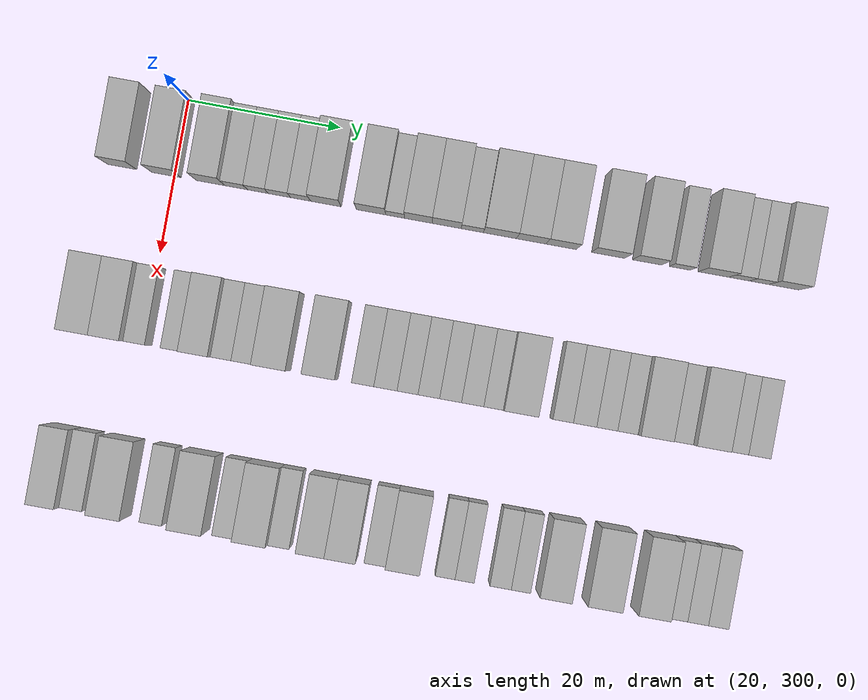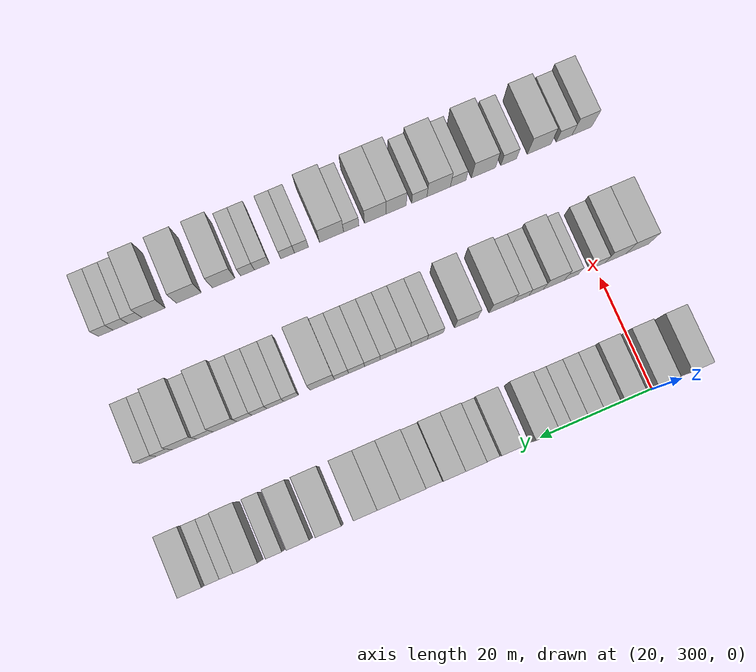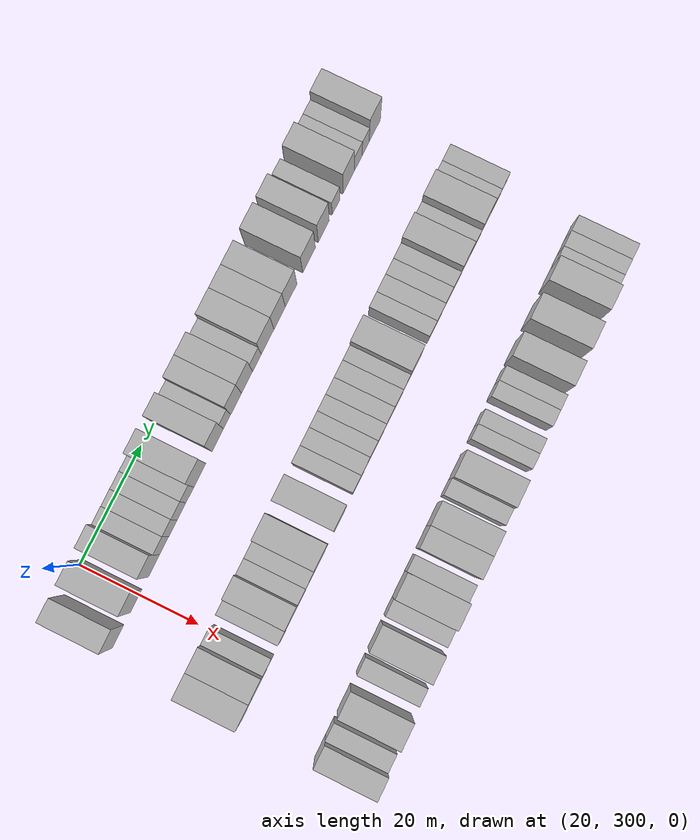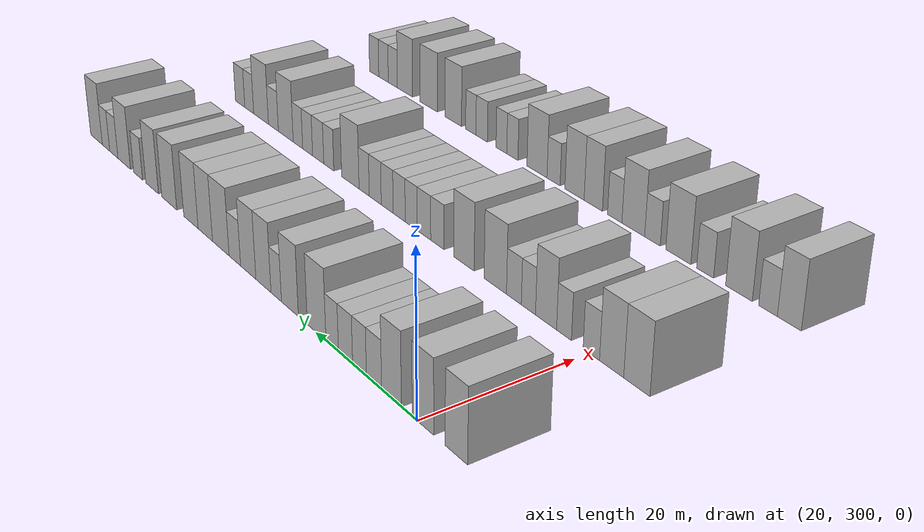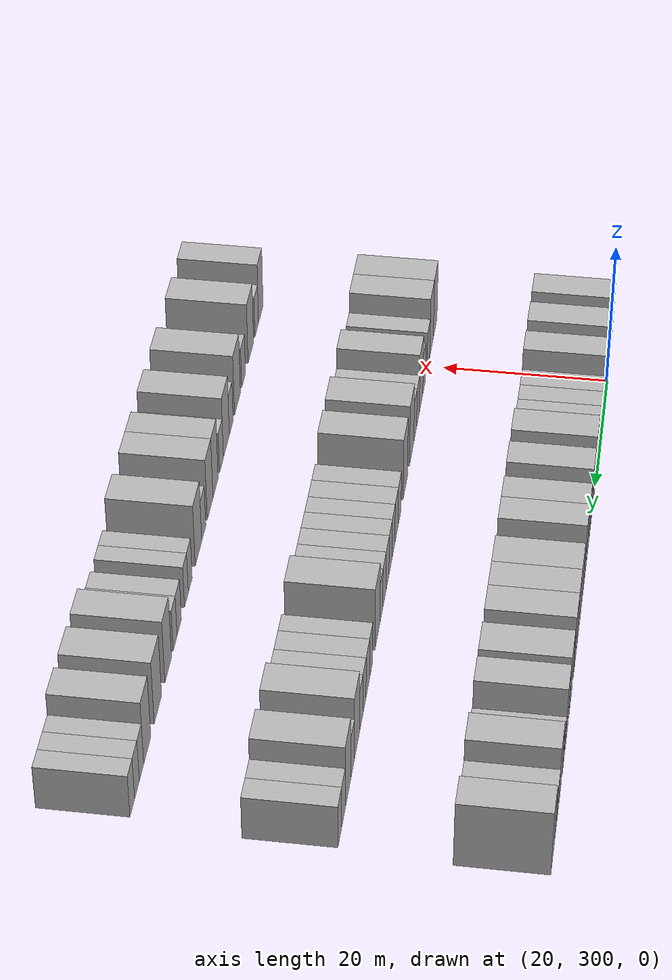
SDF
<sdf version="1.6">
 <world name="default">
  <model name="building_161">
   <static>1</static>
   <pose>25.0000 293.1831 0 0.000000 0.000000 0.000000</pose>
   <link name="link">
    <pose>0 0 4.50 0 0 0</pose>
    <collision name="collision"><geometry><box><size>10.0000 3.8060 9.0000</size></box></geometry></collision>
    <visual name="visual">
     <cast_shadows>0</cast_shadows>
     <geometry><box><size>10.0000 3.8060 9.0000</size></box></geometry>
     <material>
      <script>
       <uri>model://HANNAS_wall/materials/scripts</uri>
       <uri>model://HANNAS_wall/materials/textures</uri>
       <name>vrc/HANNAS_wall</name>
      </script>
     </material>
    </visual>
   </link>
  </model>
  <model name="building_162">
   <static>1</static>
   <pose>25.0000 299.0034 0 0.000000 0.000000 0.000000</pose>
   <link name="link">
    <pose>0 0 4.50 0 0 0</pose>
    <collision name="collision"><geometry><box><size>10.0000 3.8346 9.0000</size></box></geometry></collision>
    <visual name="visual">
     <cast_shadows>0</cast_shadows>
     <geometry><box><size>10.0000 3.8346 9.0000</size></box></geometry>
     <material>
      <script>
       <uri>model://HANNAS_wall/materials/scripts</uri>
       <uri>model://HANNAS_wall/materials/textures</uri>
       <name>vrc/HANNAS_wall</name>
      </script>
     </material>
    </visual>
   </link>
  </model>
  <model name="building_163">
   <static>1</static>
   <pose>25.0000 304.7904 0 0.000000 0.000000 0.000000</pose>
   <link name="link">
    <pose>0 0 4.50 0 0 0</pose>
    <collision name="collision"><geometry><box><size>10.0000 3.7392 9.0000</size></box></geometry></collision>
    <visual name="visual">
     <cast_shadows>0</cast_shadows>
     <geometry><box><size>10.0000 3.7392 9.0000</size></box></geometry>
     <material>
      <script>
       <uri>model://HANNAS_wall/materials/scripts</uri>
       <uri>model://HANNAS_wall/materials/textures</uri>
       <name>vrc/HANNAS_wall</name>
      </script>
     </material>
    </visual>
   </link>
  </model>
  <model name="building_164">
   <static>1</static>
   <pose>25.0000 308.1409 0 0.000000 0.000000 0.000000</pose>
   <link name="link">
    <pose>0 0 3.00 0 0 0</pose>
    <collision name="collision"><geometry><box><size>10.0000 2.9619 6.0000</size></box></geometry></collision>
    <visual name="visual">
     <cast_shadows>0</cast_shadows>
     <geometry><box><size>10.0000 2.9619 6.0000</size></box></geometry>
     <material>
      <script>
       <uri>model://HANNAS_wall/materials/scripts</uri>
       <uri>model://HANNAS_wall/materials/textures</uri>
       <name>vrc/HANNAS_wall</name>
      </script>
     </material>
    </visual>
   </link>
  </model>
  <model name="building_165">
   <static>1</static>
   <pose>25.0000 311.0022 0 0.000000 0.000000 0.000000</pose>
   <link name="link">
    <pose>0 0 3.00 0 0 0</pose>
    <collision name="collision"><geometry><box><size>10.0000 2.7606 6.0000</size></box></geometry></collision>
    <visual name="visual">
     <cast_shadows>0</cast_shadows>
     <geometry><box><size>10.0000 2.7606 6.0000</size></box></geometry>
     <material>
      <script>
       <uri>model://HANNAS_wall/materials/scripts</uri>
       <uri>model://HANNAS_wall/materials/textures</uri>
       <name>vrc/HANNAS_wall</name>
      </script>
     </material>
    </visual>
   </link>
  </model>
  <model name="building_166">
   <static>1</static>
   <pose>25.0000 313.8347 0 0.000000 0.000000 0.000000</pose>
   <link name="link">
    <pose>0 0 3.00 0 0 0</pose>
    <collision name="collision"><geometry><box><size>10.0000 2.9045 6.0000</size></box></geometry></collision>
    <visual name="visual">
     <cast_shadows>0</cast_shadows>
     <geometry><box><size>10.0000 2.9045 6.0000</size></box></geometry>
     <material>
      <script>
       <uri>model://HANNAS_wall/materials/scripts</uri>
       <uri>model://HANNAS_wall/materials/textures</uri>
       <name>vrc/HANNAS_wall</name>
      </script>
     </material>
    </visual>
   </link>
  </model>
  <model name="building_167">
   <static>1</static>
   <pose>25.0000 316.6052 0 0.000000 0.000000 0.000000</pose>
   <link name="link">
    <pose>0 0 3.00 0 0 0</pose>
    <collision name="collision"><geometry><box><size>10.0000 2.6365 6.0000</size></box></geometry></collision>
    <visual name="visual">
     <cast_shadows>0</cast_shadows>
     <geometry><box><size>10.0000 2.6365 6.0000</size></box></geometry>
     <material>
      <script>
       <uri>model://HANNAS_wall/materials/scripts</uri>
       <uri>model://HANNAS_wall/materials/textures</uri>
       <name>vrc/HANNAS_wall</name>
      </script>
     </material>
    </visual>
   </link>
  </model>
  <model name="building_168">
   <static>1</static>
   <pose>25.0000 319.9328 0 0.000000 0.000000 0.000000</pose>
   <link name="link">
    <pose>0 0 4.50 0 0 0</pose>
    <collision name="collision"><geometry><box><size>10.0000 4.0187 9.0000</size></box></geometry></collision>
    <visual name="visual">
     <cast_shadows>0</cast_shadows>
     <geometry><box><size>10.0000 4.0187 9.0000</size></box></geometry>
     <material>
      <script>
       <uri>model://HANNAS_wall/materials/scripts</uri>
       <uri>model://HANNAS_wall/materials/textures</uri>
       <name>vrc/HANNAS_wall</name>
      </script>
     </material>
    </visual>
   </link>
  </model>
  <model name="building_169">
   <static>1</static>
   <pose>25.0000 325.8651 0 0.000000 0.000000 0.000000</pose>
   <link name="link">
    <pose>0 0 4.50 0 0 0</pose>
    <collision name="collision"><geometry><box><size>10.0000 3.8458 9.0000</size></box></geometry></collision>
    <visual name="visual">
     <cast_shadows>0</cast_shadows>
     <geometry><box><size>10.0000 3.8458 9.0000</size></box></geometry>
     <material>
      <script>
       <uri>model://HANNAS_wall/materials/scripts</uri>
       <uri>model://HANNAS_wall/materials/textures</uri>
       <name>vrc/HANNAS_wall</name>
      </script>
     </material>
    </visual>
   </link>
  </model>
  <model name="building_170">
   <static>1</static>
   <pose>25.0000 329.0151 0 0.000000 0.000000 0.000000</pose>
   <link name="link">
    <pose>0 0 3.00 0 0 0</pose>
    <collision name="collision"><geometry><box><size>10.0000 2.4544 6.0000</size></box></geometry></collision>
    <visual name="visual">
     <cast_shadows>0</cast_shadows>
     <geometry><box><size>10.0000 2.4544 6.0000</size></box></geometry>
     <material>
      <script>
       <uri>model://HANNAS_wall/materials/scripts</uri>
       <uri>model://HANNAS_wall/materials/textures</uri>
       <name>vrc/HANNAS_wall</name>
      </script>
     </material>
    </visual>
   </link>
  </model>
  <model name="building_171">
   <static>1</static>
   <pose>25.0000 332.0528 0 0.000000 0.000000 0.000000</pose>
   <link name="link">
    <pose>0 0 4.50 0 0 0</pose>
    <collision name="collision"><geometry><box><size>10.0000 3.6209 9.0000</size></box></geometry></collision>
    <visual name="visual">
     <cast_shadows>0</cast_shadows>
     <geometry><box><size>10.0000 3.6209 9.0000</size></box></geometry>
     <material>
      <script>
       <uri>model://HANNAS_wall/materials/scripts</uri>
       <uri>model://HANNAS_wall/materials/textures</uri>
       <name>vrc/HANNAS_wall</name>
      </script>
     </material>
    </visual>
   </link>
  </model>
  <model name="building_172">
   <static>1</static>
   <pose>25.0000 335.7485 0 0.000000 0.000000 0.000000</pose>
   <link name="link">
    <pose>0 0 4.50 0 0 0</pose>
    <collision name="collision"><geometry><box><size>10.0000 3.7706 9.0000</size></box></geometry></collision>
    <visual name="visual">
     <cast_shadows>0</cast_shadows>
     <geometry><box><size>10.0000 3.7706 9.0000</size></box></geometry>
     <material>
      <script>
       <uri>model://HANNAS_wall/materials/scripts</uri>
       <uri>model://HANNAS_wall/materials/textures</uri>
       <name>vrc/HANNAS_wall</name>
      </script>
     </material>
    </visual>
   </link>
  </model>
  <model name="building_173">
   <static>1</static>
   <pose>25.0000 339.0953 0 0.000000 0.000000 0.000000</pose>
   <link name="link">
    <pose>0 0 3.00 0 0 0</pose>
    <collision name="collision"><geometry><box><size>10.0000 2.9230 6.0000</size></box></geometry></collision>
    <visual name="visual">
     <cast_shadows>0</cast_shadows>
     <geometry><box><size>10.0000 2.9230 6.0000</size></box></geometry>
     <material>
      <script>
       <uri>model://HANNAS_wall/materials/scripts</uri>
       <uri>model://HANNAS_wall/materials/textures</uri>
       <name>vrc/HANNAS_wall</name>
      </script>
     </material>
    </visual>
   </link>
  </model>
  <model name="building_174">
   <static>1</static>
   <pose>25.0000 342.7261 0 0.000000 0.000000 0.000000</pose>
   <link name="link">
    <pose>0 0 4.50 0 0 0</pose>
    <collision name="collision"><geometry><box><size>10.0000 4.3387 9.0000</size></box></geometry></collision>
    <visual name="visual">
     <cast_shadows>0</cast_shadows>
     <geometry><box><size>10.0000 4.3387 9.0000</size></box></geometry>
     <material>
      <script>
       <uri>model://HANNAS_wall/materials/scripts</uri>
       <uri>model://HANNAS_wall/materials/textures</uri>
       <name>vrc/HANNAS_wall</name>
      </script>
     </material>
    </visual>
   </link>
  </model>
  <model name="building_175">
   <static>1</static>
   <pose>25.0000 346.8338 0 0.000000 0.000000 0.000000</pose>
   <link name="link">
    <pose>0 0 4.50 0 0 0</pose>
    <collision name="collision"><geometry><box><size>10.0000 3.8768 9.0000</size></box></geometry></collision>
    <visual name="visual">
     <cast_shadows>0</cast_shadows>
     <geometry><box><size>10.0000 3.8768 9.0000</size></box></geometry>
     <material>
      <script>
       <uri>model://HANNAS_wall/materials/scripts</uri>
       <uri>model://HANNAS_wall/materials/textures</uri>
       <name>vrc/HANNAS_wall</name>
      </script>
     </material>
    </visual>
   </link>
  </model>
  <model name="building_176">
   <static>1</static>
   <pose>25.0000 350.7687 0 0.000000 0.000000 0.000000</pose>
   <link name="link">
    <pose>0 0 4.50 0 0 0</pose>
    <collision name="collision"><geometry><box><size>10.0000 3.9929 9.0000</size></box></geometry></collision>
    <visual name="visual">
     <cast_shadows>0</cast_shadows>
     <geometry><box><size>10.0000 3.9929 9.0000</size></box></geometry>
     <material>
      <script>
       <uri>model://HANNAS_wall/materials/scripts</uri>
       <uri>model://HANNAS_wall/materials/textures</uri>
       <name>vrc/HANNAS_wall</name>
      </script>
     </material>
    </visual>
   </link>
  </model>
  <model name="building_177">
   <static>1</static>
   <pose>25.0000 356.9418 0 0.000000 0.000000 0.000000</pose>
   <link name="link">
    <pose>0 0 4.50 0 0 0</pose>
    <collision name="collision"><geometry><box><size>10.0000 4.3532 9.0000</size></box></geometry></collision>
    <visual name="visual">
     <cast_shadows>0</cast_shadows>
     <geometry><box><size>10.0000 4.3532 9.0000</size></box></geometry>
     <material>
      <script>
       <uri>model://HANNAS_wall/materials/scripts</uri>
       <uri>model://HANNAS_wall/materials/textures</uri>
       <name>vrc/HANNAS_wall</name>
      </script>
     </material>
    </visual>
   </link>
  </model>
  <model name="building_178">
   <static>1</static>
   <pose>25.0000 362.0363 0 0.000000 0.000000 0.000000</pose>
   <link name="link">
    <pose>0 0 4.50 0 0 0</pose>
    <collision name="collision"><geometry><box><size>10.0000 3.8358 9.0000</size></box></geometry></collision>
    <visual name="visual">
     <cast_shadows>0</cast_shadows>
     <geometry><box><size>10.0000 3.8358 9.0000</size></box></geometry>
     <material>
      <script>
       <uri>model://HANNAS_wall/materials/scripts</uri>
       <uri>model://HANNAS_wall/materials/textures</uri>
       <name>vrc/HANNAS_wall</name>
      </script>
     </material>
    </visual>
   </link>
  </model>
  <model name="building_179">
   <static>1</static>
   <pose>25.0000 366.3366 0 0.000000 0.000000 0.000000</pose>
   <link name="link">
    <pose>0 0 3.00 0 0 0</pose>
    <collision name="collision"><geometry><box><size>10.0000 2.7650 6.0000</size></box></geometry></collision>
    <visual name="visual">
     <cast_shadows>0</cast_shadows>
     <geometry><box><size>10.0000 2.7650 6.0000</size></box></geometry>
     <material>
      <script>
       <uri>model://HANNAS_wall/materials/scripts</uri>
       <uri>model://HANNAS_wall/materials/textures</uri>
       <name>vrc/HANNAS_wall</name>
      </script>
     </material>
    </visual>
   </link>
  </model>
  <model name="building_180">
   <static>1</static>
   <pose>25.0000 370.7335 0 0.000000 0.000000 0.000000</pose>
   <link name="link">
    <pose>0 0 4.50 0 0 0</pose>
    <collision name="collision"><geometry><box><size>10.0000 4.0288 9.0000</size></box></geometry></collision>
    <visual name="visual">
     <cast_shadows>0</cast_shadows>
     <geometry><box><size>10.0000 4.0288 9.0000</size></box></geometry>
     <material>
      <script>
       <uri>model://HANNAS_wall/materials/scripts</uri>
       <uri>model://HANNAS_wall/materials/textures</uri>
       <name>vrc/HANNAS_wall</name>
      </script>
     </material>
    </visual>
   </link>
  </model>
  <model name="building_181">
   <static>1</static>
   <pose>25.0000 374.1108 0 0.000000 0.000000 0.000000</pose>
   <link name="link">
    <pose>0 0 3.00 0 0 0</pose>
    <collision name="collision"><geometry><box><size>10.0000 2.7257 6.0000</size></box></geometry></collision>
    <visual name="visual">
     <cast_shadows>0</cast_shadows>
     <geometry><box><size>10.0000 2.7257 6.0000</size></box></geometry>
     <material>
      <script>
       <uri>model://HANNAS_wall/materials/scripts</uri>
       <uri>model://HANNAS_wall/materials/textures</uri>
       <name>vrc/HANNAS_wall</name>
      </script>
     </material>
    </visual>
   </link>
  </model>
  <model name="building_182">
   <static>1</static>
   <pose>25.0000 376.7117 0 0.000000 0.000000 0.000000</pose>
   <link name="link">
    <pose>0 0 3.00 0 0 0</pose>
    <collision name="collision"><geometry><box><size>10.0000 2.4762 6.0000</size></box></geometry></collision>
    <visual name="visual">
     <cast_shadows>0</cast_shadows>
     <geometry><box><size>10.0000 2.4762 6.0000</size></box></geometry>
     <material>
      <script>
       <uri>model://HANNAS_wall/materials/scripts</uri>
       <uri>model://HANNAS_wall/materials/textures</uri>
       <name>vrc/HANNAS_wall</name>
      </script>
     </material>
    </visual>
   </link>
  </model>
  <model name="building_183">
   <static>1</static>
   <pose>25.0000 379.9476 0 0.000000 0.000000 0.000000</pose>
   <link name="link">
    <pose>0 0 4.50 0 0 0</pose>
    <collision name="collision"><geometry><box><size>10.0000 3.9957 9.0000</size></box></geometry></collision>
    <visual name="visual">
     <cast_shadows>0</cast_shadows>
     <geometry><box><size>10.0000 3.9957 9.0000</size></box></geometry>
     <material>
      <script>
       <uri>model://HANNAS_wall/materials/scripts</uri>
       <uri>model://HANNAS_wall/materials/textures</uri>
       <name>vrc/HANNAS_wall</name>
      </script>
     </material>
    </visual>
   </link>
  </model>
  <model name="building_347">
   <static>1</static>
   <pose>47.0000 292.3002 0 0.000000 0.000000 0.000000</pose>
   <link name="link">
    <pose>0 0 4.50 0 0 0</pose>
    <collision name="collision"><geometry><box><size>10.0000 4.1394 9.0000</size></box></geometry></collision>
    <visual name="visual">
     <cast_shadows>0</cast_shadows>
     <geometry><box><size>10.0000 4.1394 9.0000</size></box></geometry>
     <material>
      <script>
       <uri>model://HANNAS_wall/materials/scripts</uri>
       <uri>model://HANNAS_wall/materials/textures</uri>
       <name>vrc/HANNAS_wall</name>
      </script>
     </material>
    </visual>
   </link>
  </model>
  <model name="building_348">
   <static>1</static>
   <pose>47.0000 296.3431 0 0.000000 0.000000 0.000000</pose>
   <link name="link">
    <pose>0 0 4.50 0 0 0</pose>
    <collision name="collision"><geometry><box><size>10.0000 3.9463 9.0000</size></box></geometry></collision>
    <visual name="visual">
     <cast_shadows>0</cast_shadows>
     <geometry><box><size>10.0000 3.9463 9.0000</size></box></geometry>
     <material>
      <script>
       <uri>model://HANNAS_wall/materials/scripts</uri>
       <uri>model://HANNAS_wall/materials/textures</uri>
       <name>vrc/HANNAS_wall</name>
      </script>
     </material>
    </visual>
   </link>
  </model>
  <model name="building_349">
   <static>1</static>
   <pose>47.0000 299.6986 0 0.000000 0.000000 0.000000</pose>
   <link name="link">
    <pose>0 0 3.00 0 0 0</pose>
    <collision name="collision"><geometry><box><size>10.0000 2.7648 6.0000</size></box></geometry></collision>
    <visual name="visual">
     <cast_shadows>0</cast_shadows>
     <geometry><box><size>10.0000 2.7648 6.0000</size></box></geometry>
     <material>
      <script>
       <uri>model://HANNAS_wall/materials/scripts</uri>
       <uri>model://HANNAS_wall/materials/textures</uri>
       <name>vrc/HANNAS_wall</name>
      </script>
     </material>
    </visual>
   </link>
  </model>
  <model name="building_350">
   <static>1</static>
   <pose>47.0000 304.3819 0 0.000000 0.000000 0.000000</pose>
   <link name="link">
    <pose>0 0 3.00 0 0 0</pose>
    <collision name="collision"><geometry><box><size>10.0000 2.6019 6.0000</size></box></geometry></collision>
    <visual name="visual">
     <cast_shadows>0</cast_shadows>
     <geometry><box><size>10.0000 2.6019 6.0000</size></box></geometry>
     <material>
      <script>
       <uri>model://HANNAS_wall/materials/scripts</uri>
       <uri>model://HANNAS_wall/materials/textures</uri>
       <name>vrc/HANNAS_wall</name>
      </script>
     </material>
    </visual>
   </link>
  </model>
  <model name="building_351">
   <static>1</static>
   <pose>47.0000 307.5824 0 0.000000 0.000000 0.000000</pose>
   <link name="link">
    <pose>0 0 4.50 0 0 0</pose>
    <collision name="collision"><geometry><box><size>10.0000 3.7990 9.0000</size></box></geometry></collision>
    <visual name="visual">
     <cast_shadows>0</cast_shadows>
     <geometry><box><size>10.0000 3.7990 9.0000</size></box></geometry>
     <material>
      <script>
       <uri>model://HANNAS_wall/materials/scripts</uri>
       <uri>model://HANNAS_wall/materials/textures</uri>
       <name>vrc/HANNAS_wall</name>
      </script>
     </material>
    </visual>
   </link>
  </model>
  <model name="building_352">
   <static>1</static>
   <pose>47.0000 310.7981 0 0.000000 0.000000 0.000000</pose>
   <link name="link">
    <pose>0 0 3.00 0 0 0</pose>
    <collision name="collision"><geometry><box><size>10.0000 2.6325 6.0000</size></box></geometry></collision>
    <visual name="visual">
     <cast_shadows>0</cast_shadows>
     <geometry><box><size>10.0000 2.6325 6.0000</size></box></geometry>
     <material>
      <script>
       <uri>model://HANNAS_wall/materials/scripts</uri>
       <uri>model://HANNAS_wall/materials/textures</uri>
       <name>vrc/HANNAS_wall</name>
      </script>
     </material>
    </visual>
   </link>
  </model>
  <model name="building_353">
   <static>1</static>
   <pose>47.0000 313.5162 0 0.000000 0.000000 0.000000</pose>
   <link name="link">
    <pose>0 0 3.00 0 0 0</pose>
    <collision name="collision"><geometry><box><size>10.0000 2.8036 6.0000</size></box></geometry></collision>
    <visual name="visual">
     <cast_shadows>0</cast_shadows>
     <geometry><box><size>10.0000 2.8036 6.0000</size></box></geometry>
     <material>
      <script>
       <uri>model://HANNAS_wall/materials/scripts</uri>
       <uri>model://HANNAS_wall/materials/textures</uri>
       <name>vrc/HANNAS_wall</name>
      </script>
     </material>
    </visual>
   </link>
  </model>
  <model name="building_354">
   <static>1</static>
   <pose>47.0000 317.1019 0 0.000000 0.000000 0.000000</pose>
   <link name="link">
    <pose>0 0 4.50 0 0 0</pose>
    <collision name="collision"><geometry><box><size>10.0000 4.3677 9.0000</size></box></geometry></collision>
    <visual name="visual">
     <cast_shadows>0</cast_shadows>
     <geometry><box><size>10.0000 4.3677 9.0000</size></box></geometry>
     <material>
      <script>
       <uri>model://HANNAS_wall/materials/scripts</uri>
       <uri>model://HANNAS_wall/materials/textures</uri>
       <name>vrc/HANNAS_wall</name>
      </script>
     </material>
    </visual>
   </link>
  </model>
  <model name="building_355">
   <static>1</static>
   <pose>47.0000 323.3950 0 0.000000 0.000000 0.000000</pose>
   <link name="link">
    <pose>0 0 4.50 0 0 0</pose>
    <collision name="collision"><geometry><box><size>10.0000 4.2185 9.0000</size></box></geometry></collision>
    <visual name="visual">
     <cast_shadows>0</cast_shadows>
     <geometry><box><size>10.0000 4.2185 9.0000</size></box></geometry>
     <material>
      <script>
       <uri>model://HANNAS_wall/materials/scripts</uri>
       <uri>model://HANNAS_wall/materials/textures</uri>
       <name>vrc/HANNAS_wall</name>
      </script>
     </material>
    </visual>
   </link>
  </model>
  <model name="building_356">
   <static>1</static>
   <pose>47.0000 328.9337 0 0.000000 0.000000 0.000000</pose>
   <link name="link">
    <pose>0 0 3.00 0 0 0</pose>
    <collision name="collision"><geometry><box><size>10.0000 2.8590 6.0000</size></box></geometry></collision>
    <visual name="visual">
     <cast_shadows>0</cast_shadows>
     <geometry><box><size>10.0000 2.8590 6.0000</size></box></geometry>
     <material>
      <script>
       <uri>model://HANNAS_wall/materials/scripts</uri>
       <uri>model://HANNAS_wall/materials/textures</uri>
       <name>vrc/HANNAS_wall</name>
      </script>
     </material>
    </visual>
   </link>
  </model>
  <model name="building_357">
   <static>1</static>
   <pose>47.0000 331.8472 0 0.000000 0.000000 0.000000</pose>
   <link name="link">
    <pose>0 0 3.00 0 0 0</pose>
    <collision name="collision"><geometry><box><size>10.0000 2.9680 6.0000</size></box></geometry></collision>
    <visual name="visual">
     <cast_shadows>0</cast_shadows>
     <geometry><box><size>10.0000 2.9680 6.0000</size></box></geometry>
     <material>
      <script>
       <uri>model://HANNAS_wall/materials/scripts</uri>
       <uri>model://HANNAS_wall/materials/textures</uri>
       <name>vrc/HANNAS_wall</name>
      </script>
     </material>
    </visual>
   </link>
  </model>
  <model name="building_358">
   <static>1</static>
   <pose>47.0000 334.6710 0 0.000000 0.000000 0.000000</pose>
   <link name="link">
    <pose>0 0 3.00 0 0 0</pose>
    <collision name="collision"><geometry><box><size>10.0000 2.6795 6.0000</size></box></geometry></collision>
    <visual name="visual">
     <cast_shadows>0</cast_shadows>
     <geometry><box><size>10.0000 2.6795 6.0000</size></box></geometry>
     <material>
      <script>
       <uri>model://HANNAS_wall/materials/scripts</uri>
       <uri>model://HANNAS_wall/materials/textures</uri>
       <name>vrc/HANNAS_wall</name>
      </script>
     </material>
    </visual>
   </link>
  </model>
  <model name="building_359">
   <static>1</static>
   <pose>47.0000 337.3921 0 0.000000 0.000000 0.000000</pose>
   <link name="link">
    <pose>0 0 3.00 0 0 0</pose>
    <collision name="collision"><geometry><box><size>10.0000 2.7627 6.0000</size></box></geometry></collision>
    <visual name="visual">
     <cast_shadows>0</cast_shadows>
     <geometry><box><size>10.0000 2.7627 6.0000</size></box></geometry>
     <material>
      <script>
       <uri>model://HANNAS_wall/materials/scripts</uri>
       <uri>model://HANNAS_wall/materials/textures</uri>
       <name>vrc/HANNAS_wall</name>
      </script>
     </material>
    </visual>
   </link>
  </model>
  <model name="building_360">
   <static>1</static>
   <pose>47.0000 340.1739 0 0.000000 0.000000 0.000000</pose>
   <link name="link">
    <pose>0 0 3.00 0 0 0</pose>
    <collision name="collision"><geometry><box><size>10.0000 2.8009 6.0000</size></box></geometry></collision>
    <visual name="visual">
     <cast_shadows>0</cast_shadows>
     <geometry><box><size>10.0000 2.8009 6.0000</size></box></geometry>
     <material>
      <script>
       <uri>model://HANNAS_wall/materials/scripts</uri>
       <uri>model://HANNAS_wall/materials/textures</uri>
       <name>vrc/HANNAS_wall</name>
      </script>
     </material>
    </visual>
   </link>
  </model>
  <model name="building_361">
   <static>1</static>
   <pose>47.0000 342.9994 0 0.000000 0.000000 0.000000</pose>
   <link name="link">
    <pose>0 0 3.00 0 0 0</pose>
    <collision name="collision"><geometry><box><size>10.0000 2.8502 6.0000</size></box></geometry></collision>
    <visual name="visual">
     <cast_shadows>0</cast_shadows>
     <geometry><box><size>10.0000 2.8502 6.0000</size></box></geometry>
     <material>
      <script>
       <uri>model://HANNAS_wall/materials/scripts</uri>
       <uri>model://HANNAS_wall/materials/textures</uri>
       <name>vrc/HANNAS_wall</name>
      </script>
     </material>
    </visual>
   </link>
  </model>
  <model name="building_362">
   <static>1</static>
   <pose>47.0000 345.6710 0 0.000000 0.000000 0.000000</pose>
   <link name="link">
    <pose>0 0 3.00 0 0 0</pose>
    <collision name="collision"><geometry><box><size>10.0000 2.4930 6.0000</size></box></geometry></collision>
    <visual name="visual">
     <cast_shadows>0</cast_shadows>
     <geometry><box><size>10.0000 2.4930 6.0000</size></box></geometry>
     <material>
      <script>
       <uri>model://HANNAS_wall/materials/scripts</uri>
       <uri>model://HANNAS_wall/materials/textures</uri>
       <name>vrc/HANNAS_wall</name>
      </script>
     </material>
    </visual>
   </link>
  </model>
  <model name="building_363">
   <static>1</static>
   <pose>47.0000 349.0911 0 0.000000 0.000000 0.000000</pose>
   <link name="link">
    <pose>0 0 4.50 0 0 0</pose>
    <collision name="collision"><geometry><box><size>10.0000 4.3472 9.0000</size></box></geometry></collision>
    <visual name="visual">
     <cast_shadows>0</cast_shadows>
     <geometry><box><size>10.0000 4.3472 9.0000</size></box></geometry>
     <material>
      <script>
       <uri>model://HANNAS_wall/materials/scripts</uri>
       <uri>model://HANNAS_wall/materials/textures</uri>
       <name>vrc/HANNAS_wall</name>
      </script>
     </material>
    </visual>
   </link>
  </model>
  <model name="building_364">
   <static>1</static>
   <pose>47.0000 354.5673 0 0.000000 0.000000 0.000000</pose>
   <link name="link">
    <pose>0 0 3.00 0 0 0</pose>
    <collision name="collision"><geometry><box><size>10.0000 2.6051 6.0000</size></box></geometry></collision>
    <visual name="visual">
     <cast_shadows>0</cast_shadows>
     <geometry><box><size>10.0000 2.6051 6.0000</size></box></geometry>
     <material>
      <script>
       <uri>model://HANNAS_wall/materials/scripts</uri>
       <uri>model://HANNAS_wall/materials/textures</uri>
       <name>vrc/HANNAS_wall</name>
      </script>
     </material>
    </visual>
   </link>
  </model>
  <model name="building_365">
   <static>1</static>
   <pose>47.0000 357.3536 0 0.000000 0.000000 0.000000</pose>
   <link name="link">
    <pose>0 0 3.00 0 0 0</pose>
    <collision name="collision"><geometry><box><size>10.0000 2.9676 6.0000</size></box></geometry></collision>
    <visual name="visual">
     <cast_shadows>0</cast_shadows>
     <geometry><box><size>10.0000 2.9676 6.0000</size></box></geometry>
     <material>
      <script>
       <uri>model://HANNAS_wall/materials/scripts</uri>
       <uri>model://HANNAS_wall/materials/textures</uri>
       <name>vrc/HANNAS_wall</name>
      </script>
     </material>
    </visual>
   </link>
  </model>
  <model name="building_366">
   <static>1</static>
   <pose>47.0000 360.1779 0 0.000000 0.000000 0.000000</pose>
   <link name="link">
    <pose>0 0 3.00 0 0 0</pose>
    <collision name="collision"><geometry><box><size>10.0000 2.6808 6.0000</size></box></geometry></collision>
    <visual name="visual">
     <cast_shadows>0</cast_shadows>
     <geometry><box><size>10.0000 2.6808 6.0000</size></box></geometry>
     <material>
      <script>
       <uri>model://HANNAS_wall/materials/scripts</uri>
       <uri>model://HANNAS_wall/materials/textures</uri>
       <name>vrc/HANNAS_wall</name>
      </script>
     </material>
    </visual>
   </link>
  </model>
  <model name="building_367">
   <static>1</static>
   <pose>47.0000 362.8260 0 0.000000 0.000000 0.000000</pose>
   <link name="link">
    <pose>0 0 3.00 0 0 0</pose>
    <collision name="collision"><geometry><box><size>10.0000 2.6155 6.0000</size></box></geometry></collision>
    <visual name="visual">
     <cast_shadows>0</cast_shadows>
     <geometry><box><size>10.0000 2.6155 6.0000</size></box></geometry>
     <material>
      <script>
       <uri>model://HANNAS_wall/materials/scripts</uri>
       <uri>model://HANNAS_wall/materials/textures</uri>
       <name>vrc/HANNAS_wall</name>
      </script>
     </material>
    </visual>
   </link>
  </model>
  <model name="building_368">
   <static>1</static>
   <pose>47.0000 366.2251 0 0.000000 0.000000 0.000000</pose>
   <link name="link">
    <pose>0 0 4.50 0 0 0</pose>
    <collision name="collision"><geometry><box><size>10.0000 4.1826 9.0000</size></box></geometry></collision>
    <visual name="visual">
     <cast_shadows>0</cast_shadows>
     <geometry><box><size>10.0000 4.1826 9.0000</size></box></geometry>
     <material>
      <script>
       <uri>model://HANNAS_wall/materials/scripts</uri>
       <uri>model://HANNAS_wall/materials/textures</uri>
       <name>vrc/HANNAS_wall</name>
      </script>
     </material>
    </visual>
   </link>
  </model>
  <model name="building_369">
   <static>1</static>
   <pose>47.0000 369.7556 0 0.000000 0.000000 0.000000</pose>
   <link name="link">
    <pose>0 0 3.00 0 0 0</pose>
    <collision name="collision"><geometry><box><size>10.0000 2.8783 6.0000</size></box></geometry></collision>
    <visual name="visual">
     <cast_shadows>0</cast_shadows>
     <geometry><box><size>10.0000 2.8783 6.0000</size></box></geometry>
     <material>
      <script>
       <uri>model://HANNAS_wall/materials/scripts</uri>
       <uri>model://HANNAS_wall/materials/textures</uri>
       <name>vrc/HANNAS_wall</name>
      </script>
     </material>
    </visual>
   </link>
  </model>
  <model name="building_370">
   <static>1</static>
   <pose>47.0000 373.3720 0 0.000000 0.000000 0.000000</pose>
   <link name="link">
    <pose>0 0 4.50 0 0 0</pose>
    <collision name="collision"><geometry><box><size>10.0000 4.3545 9.0000</size></box></geometry></collision>
    <visual name="visual">
     <cast_shadows>0</cast_shadows>
     <geometry><box><size>10.0000 4.3545 9.0000</size></box></geometry>
     <material>
      <script>
       <uri>model://HANNAS_wall/materials/scripts</uri>
       <uri>model://HANNAS_wall/materials/textures</uri>
       <name>vrc/HANNAS_wall</name>
      </script>
     </material>
    </visual>
   </link>
  </model>
  <model name="building_371">
   <static>1</static>
   <pose>47.0000 376.8964 0 0.000000 0.000000 0.000000</pose>
   <link name="link">
    <pose>0 0 3.00 0 0 0</pose>
    <collision name="collision"><geometry><box><size>10.0000 2.6944 6.0000</size></box></geometry></collision>
    <visual name="visual">
     <cast_shadows>0</cast_shadows>
     <geometry><box><size>10.0000 2.6944 6.0000</size></box></geometry>
     <material>
      <script>
       <uri>model://HANNAS_wall/materials/scripts</uri>
       <uri>model://HANNAS_wall/materials/textures</uri>
       <name>vrc/HANNAS_wall</name>
      </script>
     </material>
    </visual>
   </link>
  </model>
  <model name="building_372">
   <static>1</static>
   <pose>47.0000 379.6730 0 0.000000 0.000000 0.000000</pose>
   <link name="link">
    <pose>0 0 3.00 0 0 0</pose>
    <collision name="collision"><geometry><box><size>10.0000 2.8589 6.0000</size></box></geometry></collision>
    <visual name="visual">
     <cast_shadows>0</cast_shadows>
     <geometry><box><size>10.0000 2.8589 6.0000</size></box></geometry>
     <material>
      <script>
       <uri>model://HANNAS_wall/materials/scripts</uri>
       <uri>model://HANNAS_wall/materials/textures</uri>
       <name>vrc/HANNAS_wall</name>
      </script>
     </material>
    </visual>
   </link>
  </model>
  <model name="building_542">
   <static>1</static>
   <pose>69.0000 292.3302 0 0.000000 0.000000 0.000000</pose>
   <link name="link">
    <pose>0 0 4.50 0 0 0</pose>
    <collision name="collision"><geometry><box><size>10.0000 3.6381 9.0000</size></box></geometry></collision>
    <visual name="visual">
     <cast_shadows>0</cast_shadows>
     <geometry><box><size>10.0000 3.6381 9.0000</size></box></geometry>
     <material>
      <script>
       <uri>model://HANNAS_wall/materials/scripts</uri>
       <uri>model://HANNAS_wall/materials/textures</uri>
       <name>vrc/HANNAS_wall</name>
      </script>
     </material>
    </visual>
   </link>
  </model>
  <model name="building_543">
   <static>1</static>
   <pose>69.0000 295.6054 0 0.000000 0.000000 0.000000</pose>
   <link name="link">
    <pose>0 0 3.00 0 0 0</pose>
    <collision name="collision"><geometry><box><size>10.0000 2.9125 6.0000</size></box></geometry></collision>
    <visual name="visual">
     <cast_shadows>0</cast_shadows>
     <geometry><box><size>10.0000 2.9125 6.0000</size></box></geometry>
     <material>
      <script>
       <uri>model://HANNAS_wall/materials/scripts</uri>
       <uri>model://HANNAS_wall/materials/textures</uri>
       <name>vrc/HANNAS_wall</name>
      </script>
     </material>
    </visual>
   </link>
  </model>
  <model name="building_544">
   <static>1</static>
   <pose>69.0000 300.2234 0 0.000000 0.000000 0.000000</pose>
   <link name="link">
    <pose>0 0 4.50 0 0 0</pose>
    <collision name="collision"><geometry><box><size>10.0000 4.3235 9.0000</size></box></geometry></collision>
    <visual name="visual">
     <cast_shadows>0</cast_shadows>
     <geometry><box><size>10.0000 4.3235 9.0000</size></box></geometry>
     <material>
      <script>
       <uri>model://HANNAS_wall/materials/scripts</uri>
       <uri>model://HANNAS_wall/materials/textures</uri>
       <name>vrc/HANNAS_wall</name>
      </script>
     </material>
    </visual>
   </link>
  </model>
  <model name="building_545">
   <static>1</static>
   <pose>69.0000 305.8212 0 0.000000 0.000000 0.000000</pose>
   <link name="link">
    <pose>0 0 3.00 0 0 0</pose>
    <collision name="collision"><geometry><box><size>10.0000 2.8720 6.0000</size></box></geometry></collision>
    <visual name="visual">
     <cast_shadows>0</cast_shadows>
     <geometry><box><size>10.0000 2.8720 6.0000</size></box></geometry>
     <material>
      <script>
       <uri>model://HANNAS_wall/materials/scripts</uri>
       <uri>model://HANNAS_wall/materials/textures</uri>
       <name>vrc/HANNAS_wall</name>
      </script>
     </material>
    </visual>
   </link>
  </model>
  <model name="building_546">
   <static>1</static>
   <pose>69.0000 310.4587 0 0.000000 0.000000 0.000000</pose>
   <link name="link">
    <pose>0 0 4.50 0 0 0</pose>
    <collision name="collision"><geometry><box><size>10.0000 4.4030 9.0000</size></box></geometry></collision>
    <visual name="visual">
     <cast_shadows>0</cast_shadows>
     <geometry><box><size>10.0000 4.4030 9.0000</size></box></geometry>
     <material>
      <script>
       <uri>model://HANNAS_wall/materials/scripts</uri>
       <uri>model://HANNAS_wall/materials/textures</uri>
       <name>vrc/HANNAS_wall</name>
      </script>
     </material>
    </visual>
   </link>
  </model>
  <model name="building_547">
   <static>1</static>
   <pose>69.0000 315.0815 0 0.000000 0.000000 0.000000</pose>
   <link name="link">
    <pose>0 0 3.00 0 0 0</pose>
    <collision name="collision"><geometry><box><size>10.0000 2.8428 6.0000</size></box></geometry></collision>
    <visual name="visual">
     <cast_shadows>0</cast_shadows>
     <geometry><box><size>10.0000 2.8428 6.0000</size></box></geometry>
     <material>
      <script>
       <uri>model://HANNAS_wall/materials/scripts</uri>
       <uri>model://HANNAS_wall/materials/textures</uri>
       <name>vrc/HANNAS_wall</name>
      </script>
     </material>
    </visual>
   </link>
  </model>
  <model name="building_548">
   <static>1</static>
   <pose>69.0000 318.6377 0 0.000000 0.000000 0.000000</pose>
   <link name="link">
    <pose>0 0 4.50 0 0 0</pose>
    <collision name="collision"><geometry><box><size>10.0000 4.2695 9.0000</size></box></geometry></collision>
    <visual name="visual">
     <cast_shadows>0</cast_shadows>
     <geometry><box><size>10.0000 4.2695 9.0000</size></box></geometry>
     <material>
      <script>
       <uri>model://HANNAS_wall/materials/scripts</uri>
       <uri>model://HANNAS_wall/materials/textures</uri>
       <name>vrc/HANNAS_wall</name>
      </script>
     </material>
    </visual>
   </link>
  </model>
  <model name="building_549">
   <static>1</static>
   <pose>69.0000 322.1586 0 0.000000 0.000000 0.000000</pose>
   <link name="link">
    <pose>0 0 3.00 0 0 0</pose>
    <collision name="collision"><geometry><box><size>10.0000 2.7725 6.0000</size></box></geometry></collision>
    <visual name="visual">
     <cast_shadows>0</cast_shadows>
     <geometry><box><size>10.0000 2.7725 6.0000</size></box></geometry>
     <material>
      <script>
       <uri>model://HANNAS_wall/materials/scripts</uri>
       <uri>model://HANNAS_wall/materials/textures</uri>
       <name>vrc/HANNAS_wall</name>
      </script>
     </material>
    </visual>
   </link>
  </model>
  <model name="building_550">
   <static>1</static>
   <pose>69.0000 326.3630 0 0.000000 0.000000 0.000000</pose>
   <link name="link">
    <pose>0 0 4.50 0 0 0</pose>
    <collision name="collision"><geometry><box><size>10.0000 3.6363 9.0000</size></box></geometry></collision>
    <visual name="visual">
     <cast_shadows>0</cast_shadows>
     <geometry><box><size>10.0000 3.6363 9.0000</size></box></geometry>
     <material>
      <script>
       <uri>model://HANNAS_wall/materials/scripts</uri>
       <uri>model://HANNAS_wall/materials/textures</uri>
       <name>vrc/HANNAS_wall</name>
      </script>
     </material>
    </visual>
   </link>
  </model>
  <model name="building_551">
   <static>1</static>
   <pose>69.0000 330.1473 0 0.000000 0.000000 0.000000</pose>
   <link name="link">
    <pose>0 0 4.50 0 0 0</pose>
    <collision name="collision"><geometry><box><size>10.0000 3.9322 9.0000</size></box></geometry></collision>
    <visual name="visual">
     <cast_shadows>0</cast_shadows>
     <geometry><box><size>10.0000 3.9322 9.0000</size></box></geometry>
     <material>
      <script>
       <uri>model://HANNAS_wall/materials/scripts</uri>
       <uri>model://HANNAS_wall/materials/textures</uri>
       <name>vrc/HANNAS_wall</name>
      </script>
     </material>
    </visual>
   </link>
  </model>
  <model name="building_552">
   <static>1</static>
   <pose>69.0000 334.4970 0 0.000000 0.000000 0.000000</pose>
   <link name="link">
    <pose>0 0 3.00 0 0 0</pose>
    <collision name="collision"><geometry><box><size>10.0000 2.7672 6.0000</size></box></geometry></collision>
    <visual name="visual">
     <cast_shadows>0</cast_shadows>
     <geometry><box><size>10.0000 2.7672 6.0000</size></box></geometry>
     <material>
      <script>
       <uri>model://HANNAS_wall/materials/scripts</uri>
       <uri>model://HANNAS_wall/materials/textures</uri>
       <name>vrc/HANNAS_wall</name>
      </script>
     </material>
    </visual>
   </link>
  </model>
  <model name="building_553">
   <static>1</static>
   <pose>69.0000 338.0538 0 0.000000 0.000000 0.000000</pose>
   <link name="link">
    <pose>0 0 4.50 0 0 0</pose>
    <collision name="collision"><geometry><box><size>10.0000 4.3464 9.0000</size></box></geometry></collision>
    <visual name="visual">
     <cast_shadows>0</cast_shadows>
     <geometry><box><size>10.0000 4.3464 9.0000</size></box></geometry>
     <material>
      <script>
       <uri>model://HANNAS_wall/materials/scripts</uri>
       <uri>model://HANNAS_wall/materials/textures</uri>
       <name>vrc/HANNAS_wall</name>
      </script>
     </material>
    </visual>
   </link>
  </model>
  <model name="building_554">
   <static>1</static>
   <pose>69.0000 343.4857 0 0.000000 0.000000 0.000000</pose>
   <link name="link">
    <pose>0 0 3.00 0 0 0</pose>
    <collision name="collision"><geometry><box><size>10.0000 2.5174 6.0000</size></box></geometry></collision>
    <visual name="visual">
     <cast_shadows>0</cast_shadows>
     <geometry><box><size>10.0000 2.5174 6.0000</size></box></geometry>
     <material>
      <script>
       <uri>model://HANNAS_wall/materials/scripts</uri>
       <uri>model://HANNAS_wall/materials/textures</uri>
       <name>vrc/HANNAS_wall</name>
      </script>
     </material>
    </visual>
   </link>
  </model>
  <model name="building_555">
   <static>1</static>
   <pose>69.0000 345.9716 0 0.000000 0.000000 0.000000</pose>
   <link name="link">
    <pose>0 0 3.00 0 0 0</pose>
    <collision name="collision"><geometry><box><size>10.0000 2.4544 6.0000</size></box></geometry></collision>
    <visual name="visual">
     <cast_shadows>0</cast_shadows>
     <geometry><box><size>10.0000 2.4544 6.0000</size></box></geometry>
     <material>
      <script>
       <uri>model://HANNAS_wall/materials/scripts</uri>
       <uri>model://HANNAS_wall/materials/textures</uri>
       <name>vrc/HANNAS_wall</name>
      </script>
     </material>
    </visual>
   </link>
  </model>
  <model name="building_556">
   <static>1</static>
   <pose>69.0000 350.5592 0 0.000000 0.000000 0.000000</pose>
   <link name="link">
    <pose>0 0 3.00 0 0 0</pose>
    <collision name="collision"><geometry><box><size>10.0000 2.7208 6.0000</size></box></geometry></collision>
    <visual name="visual">
     <cast_shadows>0</cast_shadows>
     <geometry><box><size>10.0000 2.7208 6.0000</size></box></geometry>
     <material>
      <script>
       <uri>model://HANNAS_wall/materials/scripts</uri>
       <uri>model://HANNAS_wall/materials/textures</uri>
       <name>vrc/HANNAS_wall</name>
      </script>
     </material>
    </visual>
   </link>
  </model>
  <model name="building_557">
   <static>1</static>
   <pose>69.0000 353.1593 0 0.000000 0.000000 0.000000</pose>
   <link name="link">
    <pose>0 0 3.00 0 0 0</pose>
    <collision name="collision"><geometry><box><size>10.0000 2.4794 6.0000</size></box></geometry></collision>
    <visual name="visual">
     <cast_shadows>0</cast_shadows>
     <geometry><box><size>10.0000 2.4794 6.0000</size></box></geometry>
     <material>
      <script>
       <uri>model://HANNAS_wall/materials/scripts</uri>
       <uri>model://HANNAS_wall/materials/textures</uri>
       <name>vrc/HANNAS_wall</name>
      </script>
     </material>
    </visual>
   </link>
  </model>
  <model name="building_558">
   <static>1</static>
   <pose>69.0000 357.4281 0 0.000000 0.000000 0.000000</pose>
   <link name="link">
    <pose>0 0 4.50 0 0 0</pose>
    <collision name="collision"><geometry><box><size>10.0000 4.0582 9.0000</size></box></geometry></collision>
    <visual name="visual">
     <cast_shadows>0</cast_shadows>
     <geometry><box><size>10.0000 4.0582 9.0000</size></box></geometry>
     <material>
      <script>
       <uri>model://HANNAS_wall/materials/scripts</uri>
       <uri>model://HANNAS_wall/materials/textures</uri>
       <name>vrc/HANNAS_wall</name>
      </script>
     </material>
    </visual>
   </link>
  </model>
  <model name="building_559">
   <static>1</static>
   <pose>69.0000 363.6563 0 0.000000 0.000000 0.000000</pose>
   <link name="link">
    <pose>0 0 4.50 0 0 0</pose>
    <collision name="collision"><geometry><box><size>10.0000 4.3983 9.0000</size></box></geometry></collision>
    <visual name="visual">
     <cast_shadows>0</cast_shadows>
     <geometry><box><size>10.0000 4.3983 9.0000</size></box></geometry>
     <material>
      <script>
       <uri>model://HANNAS_wall/materials/scripts</uri>
       <uri>model://HANNAS_wall/materials/textures</uri>
       <name>vrc/HANNAS_wall</name>
      </script>
     </material>
    </visual>
   </link>
  </model>
  <model name="building_560">
   <static>1</static>
   <pose>69.0000 369.8987 0 0.000000 0.000000 0.000000</pose>
   <link name="link">
    <pose>0 0 4.50 0 0 0</pose>
    <collision name="collision"><geometry><box><size>10.0000 4.0865 9.0000</size></box></geometry></collision>
    <visual name="visual">
     <cast_shadows>0</cast_shadows>
     <geometry><box><size>10.0000 4.0865 9.0000</size></box></geometry>
     <material>
      <script>
       <uri>model://HANNAS_wall/materials/scripts</uri>
       <uri>model://HANNAS_wall/materials/textures</uri>
       <name>vrc/HANNAS_wall</name>
      </script>
     </material>
    </visual>
   </link>
  </model>
  <model name="building_561">
   <static>1</static>
   <pose>69.0000 373.1948 0 0.000000 0.000000 0.000000</pose>
   <link name="link">
    <pose>0 0 3.00 0 0 0</pose>
    <collision name="collision"><geometry><box><size>10.0000 2.5056 6.0000</size></box></geometry></collision>
    <visual name="visual">
     <cast_shadows>0</cast_shadows>
     <geometry><box><size>10.0000 2.5056 6.0000</size></box></geometry>
     <material>
      <script>
       <uri>model://HANNAS_wall/materials/scripts</uri>
       <uri>model://HANNAS_wall/materials/textures</uri>
       <name>vrc/HANNAS_wall</name>
      </script>
     </material>
    </visual>
   </link>
  </model>
  <model name="building_562">
   <static>1</static>
   <pose>69.0000 375.7739 0 0.000000 0.000000 0.000000</pose>
   <link name="link">
    <pose>0 0 3.00 0 0 0</pose>
    <collision name="collision"><geometry><box><size>10.0000 2.6525 6.0000</size></box></geometry></collision>
    <visual name="visual">
     <cast_shadows>0</cast_shadows>
     <geometry><box><size>10.0000 2.6525 6.0000</size></box></geometry>
     <material>
      <script>
       <uri>model://HANNAS_wall/materials/scripts</uri>
       <uri>model://HANNAS_wall/materials/textures</uri>
       <name>vrc/HANNAS_wall</name>
      </script>
     </material>
    </visual>
   </link>
  </model>
  <model name="building_563">
   <static>1</static>
   <pose>69.0000 378.4038 0 0.000000 0.000000 0.000000</pose>
   <link name="link">
    <pose>0 0 3.00 0 0 0</pose>
    <collision name="collision"><geometry><box><size>10.0000 2.6074 6.0000</size></box></geometry></collision>
    <visual name="visual">
     <cast_shadows>0</cast_shadows>
     <geometry><box><size>10.0000 2.6074 6.0000</size></box></geometry>
     <material>
      <script>
       <uri>model://HANNAS_wall/materials/scripts</uri>
       <uri>model://HANNAS_wall/materials/textures</uri>
       <name>vrc/HANNAS_wall</name>
      </script>
     </material>
    </visual>
   </link>
  </model>
 </world>
</sdf>
